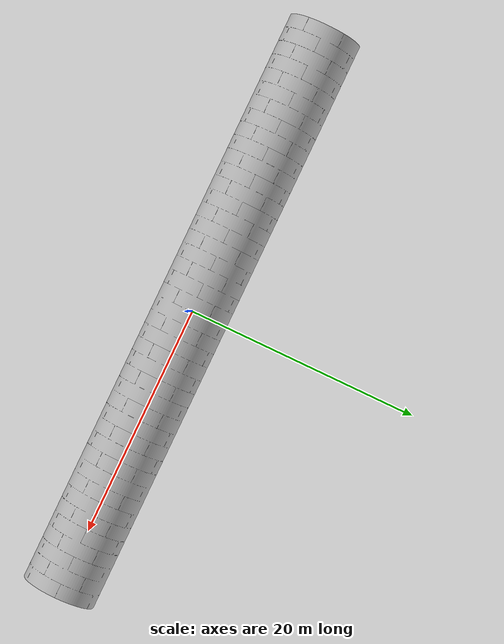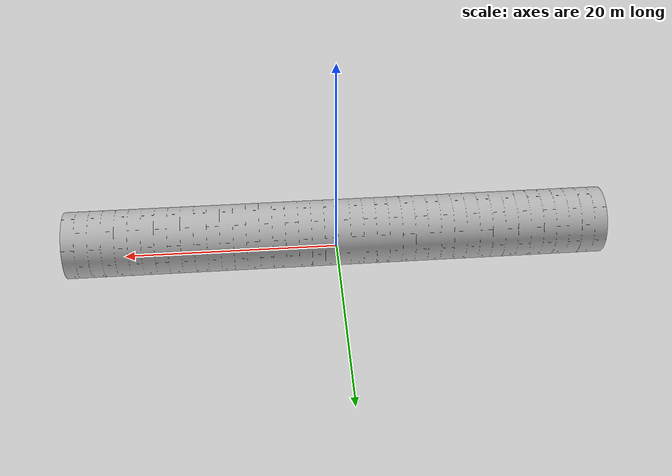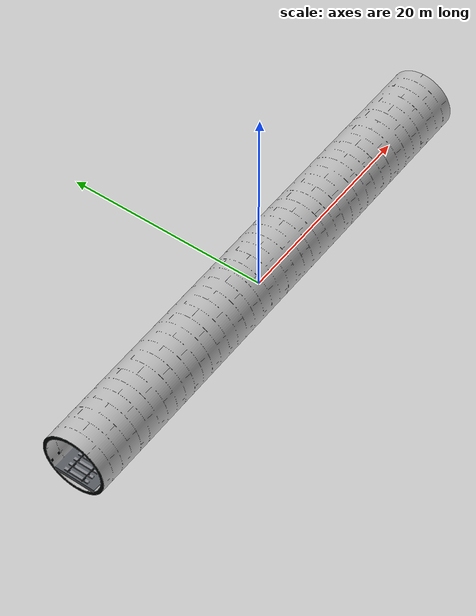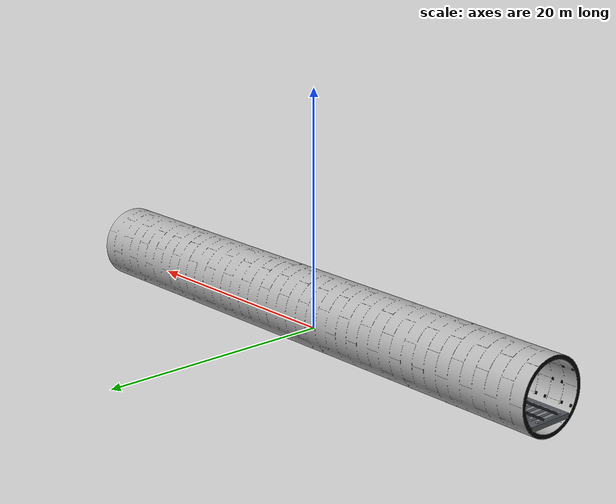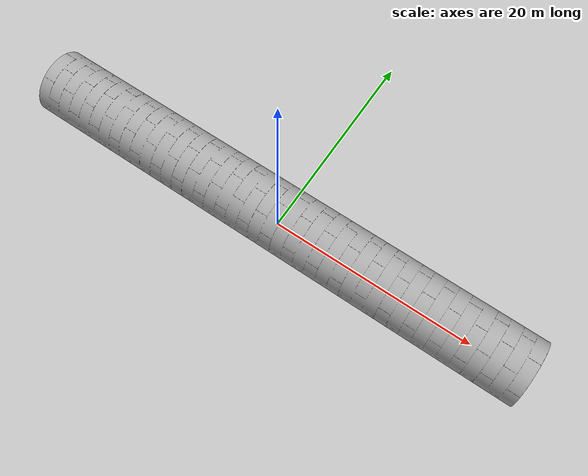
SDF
<?xml version="1.0"?>
<sdf version="1.7">
  <world name="metro_sim_tunnel_damage">
    <!-- gazebo_ros launch loads ROS-Gazebo system plugins with -s libgazebo_ros_init/factory. -->
    <physics name="default_physics" type="ode">
      <real_time_update_rate>1000</real_time_update_rate>
      <max_step_size>0.001</max_step_size>
      <real_time_factor>1</real_time_factor>
    </physics>

    <scene>
      <ambient>0.60 0.61 0.63 1</ambient>
      <background>0.025 0.027 0.032 1</background>
      <shadows>false</shadows>
      <grid>false</grid>
      <origin_visual>false</origin_visual>
    </scene>

    <gui fullscreen="0">
      <camera name="user_camera">
        <pose>-4 -5 2.7 0 0.22 0.72</pose>
        <view_controller>orbit</view_controller>
        <projection_type>perspective</projection_type>
      </camera>
    </gui>

    <light name="soft_fill" type="directional">
      <cast_shadows>false</cast_shadows>
      <pose>0 0 8 0 0 0</pose>
      <diffuse>0.18 0.18 0.18 1</diffuse>
      <specular>0.08 0.08 0.08 1</specular>
      <direction>-0.35 0 -1</direction>
    </light>

    <light name="tunnel_fill_m18" type="point"><cast_shadows>false</cast_shadows><pose>-18 0 3.45 0 0 0</pose><diffuse>0.16 0.17 0.18 1</diffuse><specular>0.02 0.02 0.02 1</specular><attenuation><range>14</range><constant>0.8</constant><linear>0.08</linear><quadratic>0.02</quadratic></attenuation></light>
    <light name="tunnel_fill_m9" type="point"><cast_shadows>false</cast_shadows><pose>-9 0 3.45 0 0 0</pose><diffuse>0.16 0.17 0.18 1</diffuse><specular>0.02 0.02 0.02 1</specular><attenuation><range>14</range><constant>0.8</constant><linear>0.08</linear><quadratic>0.02</quadratic></attenuation></light>
    <light name="tunnel_fill_0" type="point"><cast_shadows>false</cast_shadows><pose>0 0 3.45 0 0 0</pose><diffuse>0.16 0.17 0.18 1</diffuse><specular>0.02 0.02 0.02 1</specular><attenuation><range>14</range><constant>0.8</constant><linear>0.08</linear><quadratic>0.02</quadratic></attenuation></light>
    <light name="tunnel_fill_9" type="point"><cast_shadows>false</cast_shadows><pose>9 0 3.45 0 0 0</pose><diffuse>0.16 0.17 0.18 1</diffuse><specular>0.02 0.02 0.02 1</specular><attenuation><range>14</range><constant>0.8</constant><linear>0.08</linear><quadratic>0.02</quadratic></attenuation></light>
    <light name="tunnel_fill_18" type="point"><cast_shadows>false</cast_shadows><pose>18 0 3.45 0 0 0</pose><diffuse>0.16 0.17 0.18 1</diffuse><specular>0.02 0.02 0.02 1</specular><attenuation><range>14</range><constant>0.8</constant><linear>0.08</linear><quadratic>0.02</quadratic></attenuation></light>

    <model name="invisible_drive_plane">
      <static>true</static>
      <pose>0 0 0 0 0 0</pose>
      <link name="drive_plane_link">
        <collision name="drive_plane_collision">
          <pose>0 0 0.295 0 0 0</pose>
          <geometry><box><size>50 1.8 0.05</size></box></geometry>
          <surface>
            <friction><ode><mu>1.0</mu><mu2>1.0</mu2></ode></friction>
            <contact><ode><kp>1e+06</kp><kd>10</kd><max_vel>0.1</max_vel><min_depth>0.001</min_depth></ode></contact>
          </surface>
        </collision>
      </link>
    </model>

    <!-- Tunnel mesh from /home/yang/metro-inspection/ros_ws/src/metro_sim/models/subway_tunnel. -->
    <include>
      <uri>model://subway_tunnel</uri>
      <name>subway_tunnel</name>
      <pose>0 0 1.75 0 0 0</pose>
      <static>true</static>
    </include>

    <model name="red_damage_patch">
      <static>true</static>
      <pose>3.0 -2.35 1.65 0 0 0</pose>
      <link name="patch">
        <!-- Transparent red fill: looks like a detected damage region and still has collision for LiDAR. -->
        <visual name="patch_transparent_fill">
          <geometry><box><size>1.60 0.025 1.20</size></box></geometry>
          <material>
            <ambient>1 0 0 0.28</ambient>
            <diffuse>1 0 0 0.28</diffuse>
            <specular>0.05 0 0 0.28</specular>
            <emissive>0.45 0 0 0.28</emissive>
          </material>
          <transparency>0.72</transparency>
        </visual>

        <!-- Solid red bounding-box border: four thin boxes, similar to a YOLO detection box. -->
        <visual name="patch_border_top">
          <pose>0 0 0.56 0 0 0</pose>
          <geometry><box><size>1.60 0.045 0.08</size></box></geometry>
          <material><ambient>1 0 0 1</ambient><diffuse>1 0 0 1</diffuse><specular>0.12 0 0 1</specular><emissive>1 0 0 1</emissive></material>
        </visual>
        <visual name="patch_border_bottom">
          <pose>0 0 -0.56 0 0 0</pose>
          <geometry><box><size>1.60 0.045 0.08</size></box></geometry>
          <material><ambient>1 0 0 1</ambient><diffuse>1 0 0 1</diffuse><specular>0.12 0 0 1</specular><emissive>1 0 0 1</emissive></material>
        </visual>
        <visual name="patch_border_left">
          <pose>-0.76 0 0 0 0 0</pose>
          <geometry><box><size>0.08 0.045 1.20</size></box></geometry>
          <material><ambient>1 0 0 1</ambient><diffuse>1 0 0 1</diffuse><specular>0.12 0 0 1</specular><emissive>1 0 0 1</emissive></material>
        </visual>
        <visual name="patch_border_right">
          <pose>0.76 0 0 0 0 0</pose>
          <geometry><box><size>0.08 0.045 1.20</size></box></geometry>
          <material><ambient>1 0 0 1</ambient><diffuse>1 0 0 1</diffuse><specular>0.12 0 0 1</specular><emissive>1 0 0 1</emissive></material>
        </visual>

        <!-- One whole collision plane: LiDAR can hit the filled region, not only the border. -->
        <collision name="patch_collision">
          <geometry><box><size>1.60 0.025 1.20</size></box></geometry>
          <laser_retro>80.0</laser_retro>
        </collision>
      </link>
    </model>
  </world>
</sdf>

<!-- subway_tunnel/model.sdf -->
<sdf version="1.7">
  <model name="subway_tunnel">
    <static>true</static>
    <link name="tunnel">
      <visual name="visual">
        <geometry>
          <mesh>
            <uri>model://subway_tunnel/meshes/tunnel.dae</uri>
            <scale>1 1 1</scale>
          </mesh>
        </geometry>
        <cast_shadows>true</cast_shadows>
      </visual>

      <collision name="collision">
        <geometry>
          <mesh>
            <uri>model://subway_tunnel/meshes/tunnel_collision.stl</uri>
            <scale>1 1 1</scale>
          </mesh>
        </geometry>
        <surface>
          <friction>
            <ode>
              <mu>1</mu>
              <mu2>1</mu2>
            </ode>
          </friction>
          <contact>
            <ode>
              <kp>1e+13</kp>
              <kd>1</kd>
              <max_vel>0.01</max_vel>
              <min_depth>0</min_depth>
            </ode>
          </contact>
        </surface>
      </collision>
    </link>
  </model>
</sdf>
